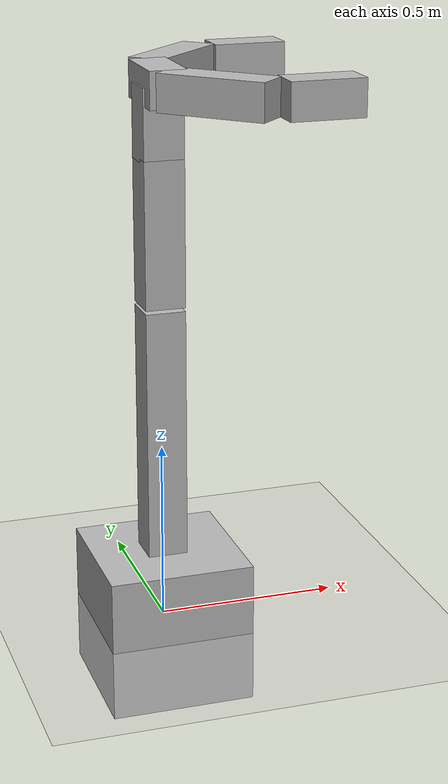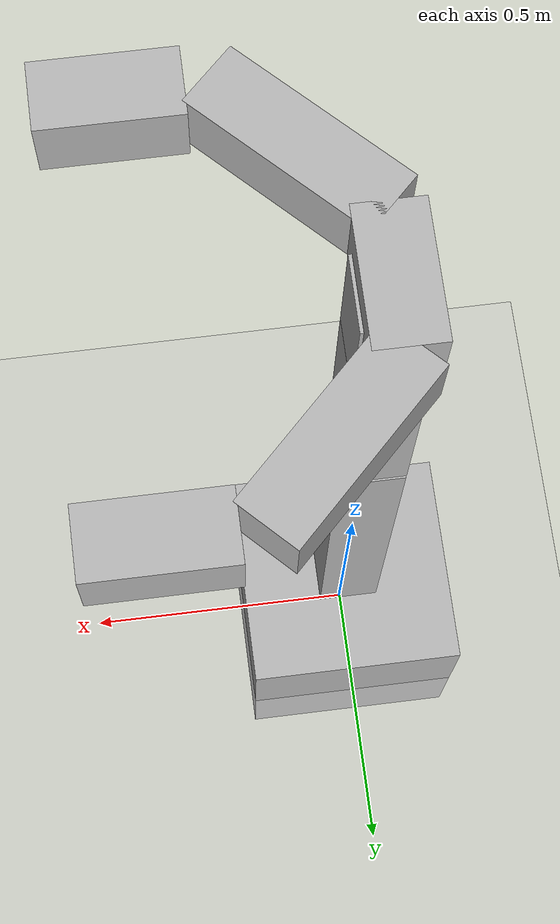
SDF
<?xml version="1.0"?>
<sdf version="1.4">
  <world name="default">

    <!-- Ground Plane -->
    <include>
      <uri>model://ground_plane</uri>
    </include>

    <include>
      <uri>model://sun</uri>
    </include>
     <include>
      <uri>model://assignment_arm</uri>
    </include>

  </world>
</sdf>

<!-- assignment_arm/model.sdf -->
<sdf version="1.4">

    <model name="Arm">
    <link name="arm_base">
    <pose>0 0 0 0 0 0</pose><inertial>
        <mass>5000.0</mass>
        <inertia> <!-- inertias are tricky to compute -->
          <!-- http://gazebosim.org/tutorials?tut=inertia&cat=build_robot -->
          <ixx>13.38</ixx>       <!-- for a box: ixx = 0.083 * mass * (y*y + z*z) -->
          <ixy>0.0</ixy>         <!-- for a box: ixy = 0 -->
          <ixz>0.0</ixz>         <!-- for a box: ixz = 0 -->
          <iyy>13.38</iyy>       <!-- for a box: iyy = 0.083 * mass * (x*x + z*z) -->
          <iyz>0.0</iyz>         <!-- for a box: iyz = 0 -->
          <izz>13.38</izz>       <!-- for a box: izz = 0.083 * mass * (x*x + y*y) -->
        </inertia>
      </inertial>
    <visual name="arm_base_vis">
        <geometry>
            <box>
                <size>0.4 0.4 0.4</size>
            </box>
        </geometry>
    </visual>
    <collision name="arm_base_col">

        <geometry>
            <box>
                <size>0.2 0.2 0.2</size>
            </box>
        </geometry>
    </collision>
</link>
 <joint type="revolute" name="base_main">
        <pose>0 0.2 0.4 0 0 0</pose>
        <child>main_body</child>
        <parent>arm_base</parent>

        <axis>
          <xyz>0 1 0</xyz>
          <dynamics>
            <friction>0.05</friction>
            <damping>0.3</damping>
        </dynamics>
           <limit>
            <upper>2</upper>
            <lower>-1</lower>
          </limit>
        </axis>
      </joint>

      <link name="main_body">
      <pose>0 0 0.4 0 0 0</pose>
      <inertial>
        <mass>1.0</mass>
        <inertia> <!-- inertias are tricky to compute -->
          <!-- http://gazebosim.org/tutorials?tut=inertia&cat=build_robot -->
          <ixx>0.084</ixx>       <!-- for a box: ixx = 0.083 * mass * (y*y + z*z) -->
          <ixy>0.0</ixy>         <!-- for a box: ixy = 0 -->
          <ixz>0.0</ixz>         <!-- for a box: ixz = 0 -->
          <iyy>0.084</iyy>       <!-- for a box: iyy = 0.083 * mass * (x*x + z*z) -->
          <iyz>0.0</iyz>         <!-- for a box: iyz = 0 -->
          <izz>0.0020086</izz>       <!-- for a box: izz = 0.083 * mass * (x*x + y*y) -->
        </inertia>
      </inertial>
        <collision name="main_collision">
          <geometry>
            <box>
              <size>0.11 0.11 1</size>
            </box>
          </geometry>
        </collision>

        <visual name="main_visual">
          <geometry>
            <box>
              <size>0.11 0.11 1</size>
            </box>
          </geometry>
        </visual>
      </link>
      <link name="articulator">
        <pose>0 0 1.11 0 0 0</pose>
        <collision name="articulator_collision">
          <geometry>
            <box>
              <size>0.11 0.11 0.4</size>
            </box>
          </geometry>
        </collision>
        <visual name="articulator_visual">
          <geometry>
            <box>
              <size>0.11 0.11 0.4</size>
            </box>
          </geometry>
        </visual>
      </link>

      <joint type="revolute" name="arm_hinge">
        <pose>-0.055 -0.055 -0.2 0 0 0</pose>

        <parent>main_body</parent>
        <child>articulator</child>

        <axis>
          <xyz>0 1 0</xyz>
          <dynamics>
            <friction>0.05</friction>
            <damping>0.13</damping>
        </dynamics>
           <limit>
            <upper>0.4</upper>
            <lower>-1.4</lower>
          </limit>
        </axis>
      </joint>

      <joint type="revolute" name="hand_arm">
        <pose>-0.11 -0.055 -0.1 0 0 0</pose>

        <parent>articulator</parent>
        <child>hand</child>

        <axis>
          <xyz>0 1 0</xyz>
          <dynamics>
            <friction>0.05</friction>
            <damping>0.23</damping>
        </dynamics>

           <limit>
            <upper>0.4</upper>
            <lower>-0.8</lower>
          </limit>
        </axis>
      </joint>

      <link name="hand">
        <pose>0 0 1.4 0 0 0</pose>
        <collision name="hand_collision">
          <geometry>
            <box>
              <size>0.11 0.11 0.2</size>
            </box>
          </geometry>
        </collision>
        <visual name="hand_visual">
          <geometry>
            <box>
              <size>0.11 0.11 0.2</size>
            </box>
          </geometry>
        </visual>
      </link>

<link name="palm">
            <pose>0.0 0.0 1.5 0 0 0</pose>
            <inertial>
                <inertia>
                    <ixx>0.01</ixx>
                    <ixy>0</ixy>
                    <ixz>0</ixz>
                    <iyy>0.01</iyy>
                    <iyz>0</iyz>
                    <izz>0.01</izz>
                </inertia>
                <mass>0.5</mass>
            </inertial>
            <collision name="collision">
                <geometry>
                    <box>
                        <size>0.1 0.2 0.1</size>
                    </box>
                </geometry>
            </collision>
            <visual name="visual">
                <geometry>
                    <box>
                        <size>0.1 0.2 0.1</size>
                    </box>
                </geometry>
                <material>
                    <script>Gazebo/Red</script>
                </material>
            </visual>
        </link>
        <link name="left_finger">
            <pose>0.1 0.2 1.5 0 0 -0.78539</pose>
            <inertial>
                <inertia>
                    <ixx>0.01</ixx>
                    <ixy>0</ixy>
                    <ixz>0</ixz>
                    <iyy>0.01</iyy>
                    <iyz>0</iyz>
                    <izz>0.01</izz>
                </inertia>
                <mass>0.1</mass>
            </inertial>
            <collision name="collision">
                <geometry>
                    <box>
                        <size>0.1 0.3 0.1</size>
                    </box>
                </geometry>
            </collision>
            <visual name="visual">
                <geometry>
                    <box>
                        <size>0.1 0.3 0.1</size>
                    </box>
                </geometry>
                <material>
                    <script>Gazebo/Blue</script>
                </material>
            </visual>
        </link>
        <link name="left_finger_tip">
            <pose>0.336 0.3 1.5 0 0 1.5707</pose>
            <inertial>
                <inertia>
                    <ixx>0.01</ixx>
                    <ixy>0</ixy>
                    <ixz>0</ixz>
                    <iyy>0.01</iyy>
                    <iyz>0</iyz>
                    <izz>0.01</izz>
                </inertia>
                <mass>0.1</mass>
            </inertial>
            <collision name="collision">
                <geometry>
                    <box>
                        <size>0.1 0.2 0.1</size>
                    </box>
                </geometry>
            </collision>
            <visual name="visual">
                <geometry>
                    <box>
                        <size>0.1 0.2 0.1</size>
                    </box>
                </geometry>
                <material>
                    <script>Gazebo/Blue</script>
                </material>
            </visual>
        </link>
        <link name="right_finger">
            <pose>0.1 -0.2 1.5 0 0 .78539</pose>
            <inertial>
                <inertia>
                    <ixx>0.01</ixx>
                    <ixy>0</ixy>
                    <ixz>0</ixz>
                    <iyy>0.01</iyy>
                    <iyz>0</iyz>
                    <izz>0.01</izz>
                </inertia>
                <mass>0.1</mass>
            </inertial>
            <collision name="collision">
                <geometry>
                    <box>
                        <size>0.1 0.3 0.1</size>
                    </box>
                </geometry>
            </collision>
            <visual name="visual">
                <geometry>
                    <box>
                        <size>0.1 0.3 0.1</size>
                    </box>
                </geometry>
                <material>
                    <script>Gazebo/Green</script>
                </material>
            </visual>
        </link>
        <link name="right_finger_tip">
            <pose>0.336 -0.3 1.5 0 0 1.5707</pose>
            <inertial>
                <inertia>
                    <ixx>0.01</ixx>
                    <ixy>0</ixy>
                    <ixz>0</ixz>
                    <iyy>0.01</iyy>
                    <iyz>0</iyz>
                    <izz>0.01</izz>
                </inertia>
                <mass>0.1</mass>
            </inertial>
            <collision name="collision">
                <geometry>
                    <box>
                        <size>0.1 0.2 0.1</size>
                    </box>
                </geometry>
            </collision>
            <visual name="visual">
                <geometry>
                    <box>
                        <size>0.1 0.2 0.1</size>
                    </box>
                </geometry>
                <material>
                    <script>Gazebo/Green</script>
                </material>
            </visual>
        </link>

        <joint name="palm_left_finger" type="revolute">
            <pose>0 -0.15 0 0 0 0</pose>
            <child>left_finger</child>
            <parent>palm</parent>
            <axis>
                <limit>
                    <lower>-0.4</lower>
                    <upper>0.4</upper>
                </limit>
                <xyz>0 0 1</xyz>
            </axis>
        </joint>
        <joint name="left_finger_tip" type="fixed">
            <pose>0 0.1 0 0 0 0</pose>
            <child>left_finger_tip</child>
            <parent>left_finger</parent>
        </joint>
        <joint name="palm_right_finger" type="revolute">
            <pose>0 0.15 0 0 0 0</pose>
            <child>right_finger</child>
            <parent>palm</parent>
            <axis>
                <limit>
                    <lower>-0.4</lower>
                    <upper>0.4</upper>
                </limit>
                <xyz>0 0 1</xyz>
            </axis>
        </joint>
        <joint name="right_finger_tip" type="fixed">
            <pose>0 0.1 0 0 0 0</pose>
            <child>right_finger_tip</child>
            <parent>right_finger</parent>
        </joint>

        <joint name="griper_hand" type="fixed">
            <pose>0 0.1 0 0 0 0</pose>
            <child>palm</child>
            <parent>hand</parent>
        </joint>
        <plugin name="arm_angle" filename="libarm_angle.so"/>
    </model>
</sdf>
